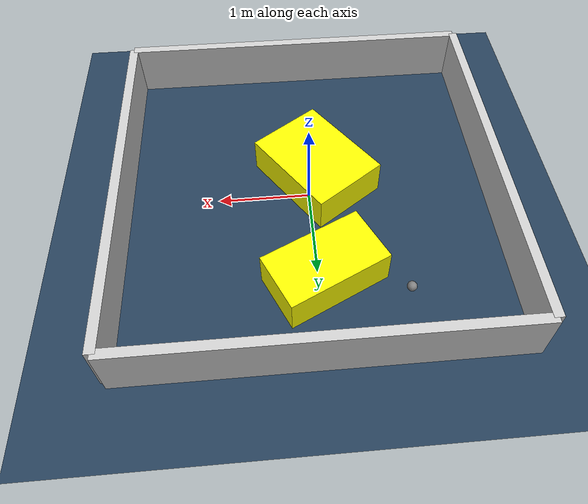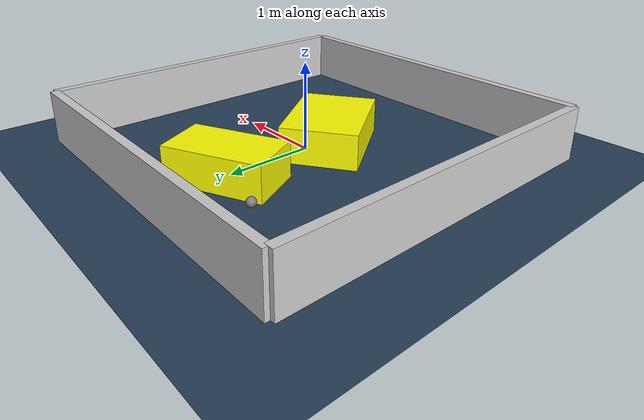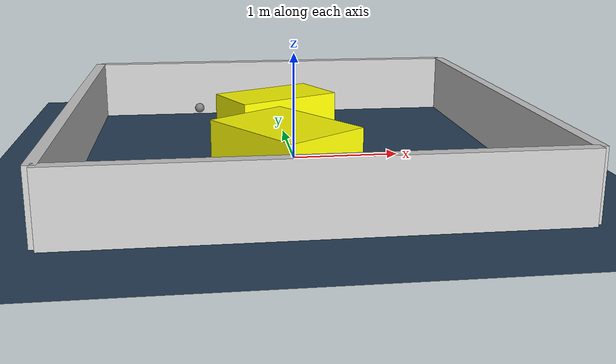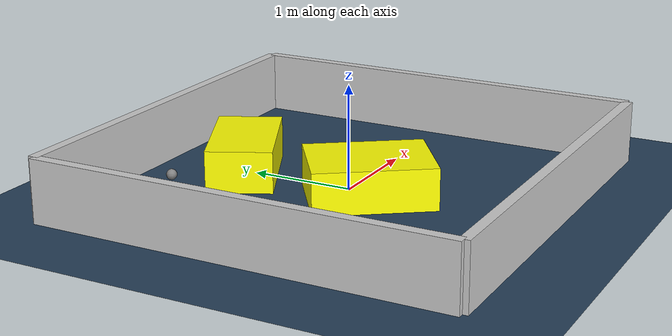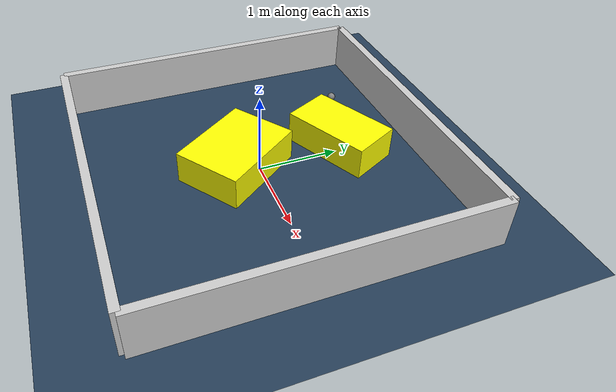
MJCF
<?xml version="1.0" ?>
<mujoco model="generated_environment">
  <option timestep="0.01" integrator="RK4" cone="elliptic"/>
  <default>
    <geom density="1"/>
  </default>
  <asset>
    <texture builtin="gradient" height="3072" rgb1="0.3 0.5 0.7" rgb2="0 0 0" type="skybox" width="512"/>
    <texture builtin="checker" height="300" mark="edge" markrgb="0.8 0.8 0.8" name="groundplane" rgb1="0.2 0.3 0.4" rgb2="0.1 0.2 0.3" type="2d" width="300"/>
    <material name="groundplane" reflectance="0.2" texrepeat="5 5" texture="groundplane" texuniform="true"/>
    <material name="robot" rgba="0.0 1.0 0.0 1"/>
  </asset>
  <worldbody>
    <light dir="0 0 -1" directional="true" pos="0 0 1.5"/>
    <geom condim="4" friction="1.0 0.005 0.001" material="groundplane" name="floor" size="0 0 0.05" type="plane"/>
    <body name="walls">
      <geom name="wall_1" condim="4" pos="-2.0 0.0 0.3" rgba="0.800000011920929 0.800000011920929 0.800000011920929 1.0" size="0.05 2.0 0.3" type="box"/>
      <geom name="wall_2" condim="4" pos="2.0 0.0 0.3" rgba="0.800000011920929 0.800000011920929 0.800000011920929 1.0" size="0.05 2.0 0.3" type="box"/>
      <geom name="wall_3" condim="4" pos="0.0 -2.0 0.3" rgba="0.800000011920929 0.800000011920929 0.800000011920929 1.0" size="2.0 0.05 0.3" type="box"/>
      <geom name="wall_4" condim="4" pos="0.0 2.0 0.3" rgba="0.800000011920929 0.800000011920929 0.800000011920929 1.0" size="2.0 0.05 0.3" type="box"/>
    </body>
    <body name="robot">
      <joint name="joint_x" type="slide" pos="0 0 0" axis="1 0 0"/>
      <joint name="joint_y" type="slide" pos="0 0 0" axis="0 1 0"/>
      <geom name="robot" type="sphere" pos="-0.8833097398829101 1.3599405329675816 0.2" size="0.05" mass="5." friction="1.0 0.005 0.0001" condim="4"/>
      <site name="sensor_ball"/>
    </body>
    <body name="obstacle_1_movable">
      <geom name="obstacle_1_movable" condim="4" pos="-0.10588924629122443 -0.263519005589711 0.2" euler="0 0 35.11262212534561" friction="1.0 0.005 0.001" rgba="1 1 0 1" size="0.42545592986916825 0.5710196453299281 0.2" type="box" mass="0.1"/>
      <joint type="free"/>
    </body>
    <body name="obstacle_2_movable">
      <geom name="obstacle_2_movable" condim="4" pos="-0.06785730705952964 1.0825101389533645 0.2" euler="0 0 25.846492561761394" friction="1.0 0.005 0.001" rgba="1 1 0 1" size="0.5569507076413642 0.31232264125234055 0.2" type="box" mass="0.1"/>
      <joint type="free"/>
    </body>
  </worldbody>
  <actuator>
    <motor name="actuator_x" joint="joint_x" gear="1" ctrlrange="-1 1"/>
    <motor name="actuator_y" joint="joint_y" gear="1" ctrlrange="-1 1"/>
  </actuator>
</mujoco>
